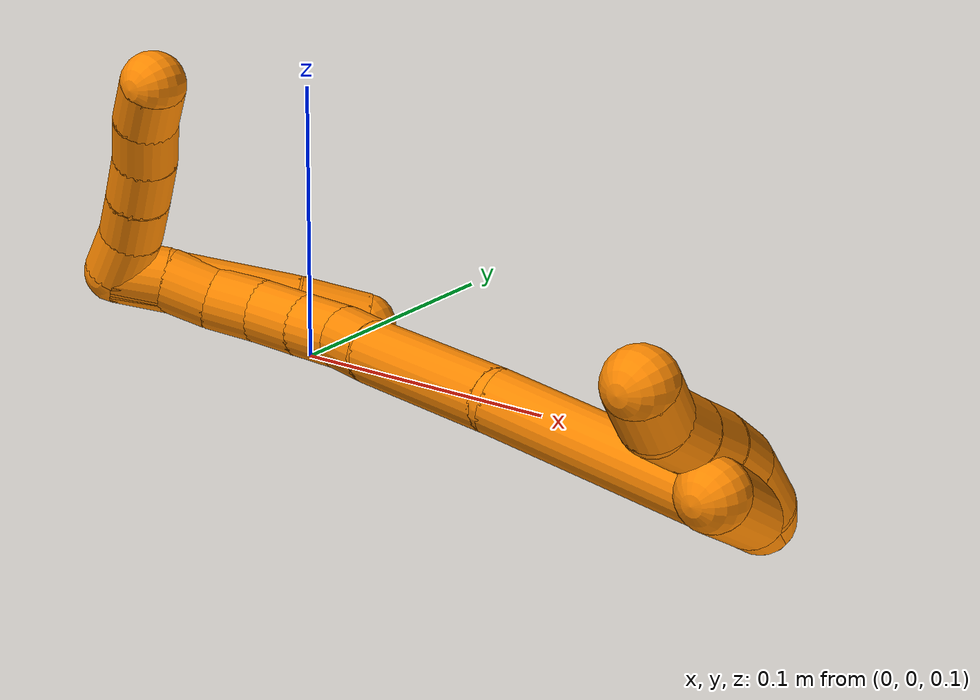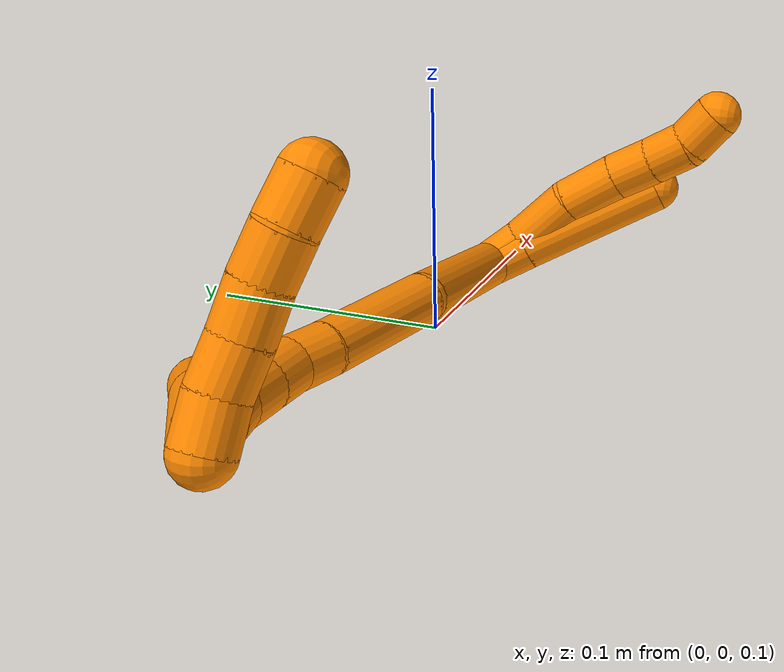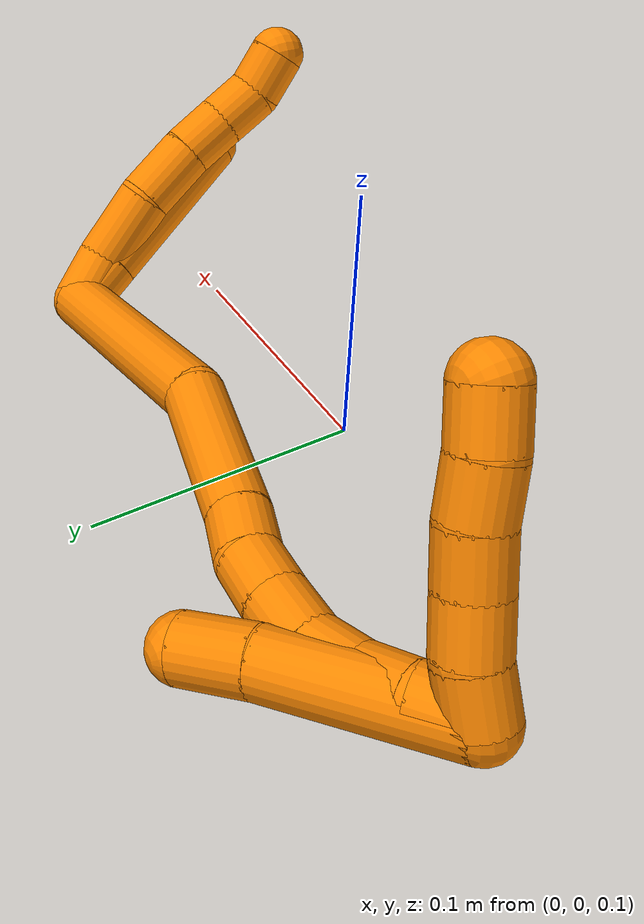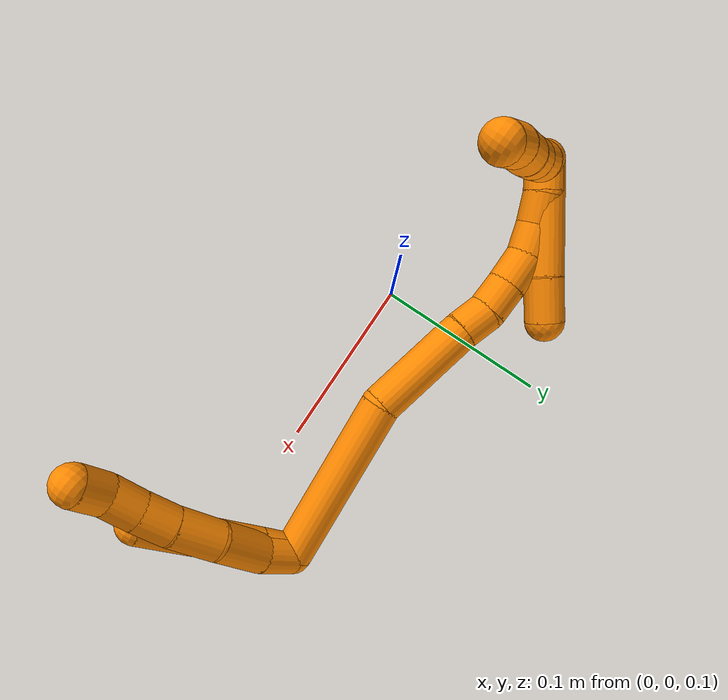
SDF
<sdf version="1.7">
 <world name="default">
  <model name="19">
   <static>0</static>
   <link name="19">
    <collision name="collision-cylinder-e_1_2_8">
     <pose>0.006887 -0.004258 -0.007952 2.64995 0.652085 1.8648</pose>
     <geometry><cylinder><radius>0.0125</radius><length>0.022697</length></cylinder></geometry>
     <surface>
      <friction><ode><mu>1.16</mu><mu2>1.16</mu2><slip1>0</slip1><slip2>0</slip2></ode></friction>
      <contact><ode><kp>1e+06</kp><kd>1</kd><max_vel>0</max_vel><min_depth>0.001</min_depth></ode></contact>
     </surface>
    </collision>
    <visual name="visual-cylinder-e_1_2_8">
     <pose>0.006887 -0.004258 -0.007952 2.64995 0.652085 1.8648</pose>
     <geometry><cylinder><radius>0.0125</radius><length>0.022697</length></cylinder></geometry>
     <material><ambient>0.996078 0.537255 0 1</ambient></material>
    </visual>
    <collision name="collision-cylinder-e_2_8_9">
     <pose>0.021099 -0.018399 -0.027818 2.44915 0.441994 1.11399</pose>
     <geometry><cylinder><radius>0.0125</radius><length>0.034251</length></cylinder></geometry>
     <surface>
      <friction><ode><mu>1.16</mu><mu2>1.16</mu2><slip1>0</slip1><slip2>0</slip2></ode></friction>
      <contact><ode><kp>1e+06</kp><kd>1</kd><max_vel>0</max_vel><min_depth>0.001</min_depth></ode></contact>
     </surface>
    </collision>
    <visual name="visual-cylinder-e_2_8_9">
     <pose>0.021099 -0.018399 -0.027818 2.44915 0.441994 1.11399</pose>
     <geometry><cylinder><radius>0.0125</radius><length>0.034251</length></cylinder></geometry>
     <material><ambient>0.996078 0.537255 0 1</ambient></material>
    </visual>
    <collision name="collision-cylinder-e_3_9_10">
     <pose>0.034359 -0.034276 -0.051944 2.68525 0.411398 1.46398</pose>
     <geometry><cylinder><radius>0.0125</radius><length>0.029684</length></cylinder></geometry>
     <surface>
      <friction><ode><mu>1.16</mu><mu2>1.16</mu2><slip1>0</slip1><slip2>0</slip2></ode></friction>
      <contact><ode><kp>1e+06</kp><kd>1</kd><max_vel>0</max_vel><min_depth>0.001</min_depth></ode></contact>
     </surface>
    </collision>
    <visual name="visual-cylinder-e_3_9_10">
     <pose>0.034359 -0.034276 -0.051944 2.68525 0.411398 1.46398</pose>
     <geometry><cylinder><radius>0.0125</radius><length>0.029684</length></cylinder></geometry>
     <material><ambient>0.996078 0.537255 0 1</ambient></material>
    </visual>
    <collision name="collision-cylinder-e_4_10_11">
     <pose>0.043567 -0.044615 -0.073667 2.71315 0.303342 1.22487</pose>
     <geometry><cylinder><radius>0.0125</radius><length>0.021913</length></cylinder></geometry>
     <surface>
      <friction><ode><mu>1.16</mu><mu2>1.16</mu2><slip1>0</slip1><slip2>0</slip2></ode></friction>
      <contact><ode><kp>1e+06</kp><kd>1</kd><max_vel>0</max_vel><min_depth>0.001</min_depth></ode></contact>
     </surface>
    </collision>
    <visual name="visual-cylinder-e_4_10_11">
     <pose>0.043567 -0.044615 -0.073667 2.71315 0.303342 1.22487</pose>
     <geometry><cylinder><radius>0.0125</radius><length>0.021913</length></cylinder></geometry>
     <material><ambient>0.996078 0.537255 0 1</ambient></material>
    </visual>
    <collision name="collision-cylinder-e_5_11_12">
     <pose>0.049537 -0.053629 -0.0921 2.65938 0.261686 0.982777</pose>
     <geometry><cylinder><radius>0.0125</radius><length>0.020852</length></cylinder></geometry>
     <surface>
      <friction><ode><mu>1.16</mu><mu2>1.16</mu2><slip1>0</slip1><slip2>0</slip2></ode></friction>
      <contact><ode><kp>1e+06</kp><kd>1</kd><max_vel>0</max_vel><min_depth>0.001</min_depth></ode></contact>
     </surface>
    </collision>
    <visual name="visual-cylinder-e_5_11_12">
     <pose>0.049537 -0.053629 -0.0921 2.65938 0.261686 0.982777</pose>
     <geometry><cylinder><radius>0.0125</radius><length>0.020852</length></cylinder></geometry>
     <material><ambient>0.996078 0.537255 0 1</ambient></material>
    </visual>
    <collision name="collision-cylinder-e_6_12_6">
     <pose>0.056758 -0.06489 -0.107522 2.34922 0.454592 1.01018</pose>
     <geometry><cylinder><radius>0.0125</radius><length>0.020603</length></cylinder></geometry>
     <surface>
      <friction><ode><mu>1.16</mu><mu2>1.16</mu2><slip1>0</slip1><slip2>0</slip2></ode></friction>
      <contact><ode><kp>1e+06</kp><kd>1</kd><max_vel>0</max_vel><min_depth>0.001</min_depth></ode></contact>
     </surface>
    </collision>
    <visual name="visual-cylinder-e_6_12_6">
     <pose>0.056758 -0.06489 -0.107522 2.34922 0.454592 1.01018</pose>
     <geometry><cylinder><radius>0.0125</radius><length>0.020603</length></cylinder></geometry>
     <material><ambient>0.996078 0.537255 0 1</ambient></material>
    </visual>
    <collision name="collision-cylinder-e_1_2_13">
     <pose>0.005609 -0.003415 -0.009477 2.7957 0.50804 1.95705</pose>
     <geometry><cylinder><radius>0.0125</radius><length>0.023059</length></cylinder></geometry>
     <surface>
      <friction><ode><mu>1.16</mu><mu2>1.16</mu2><slip1>0</slip1><slip2>0</slip2></ode></friction>
      <contact><ode><kp>1e+06</kp><kd>1</kd><max_vel>0</max_vel><min_depth>0.001</min_depth></ode></contact>
     </surface>
    </collision>
    <visual name="visual-cylinder-e_1_2_13">
     <pose>0.005609 -0.003415 -0.009477 2.7957 0.50804 1.95705</pose>
     <geometry><cylinder><radius>0.0125</radius><length>0.023059</length></cylinder></geometry>
     <material><ambient>0.996078 0.537255 0 1</ambient></material>
    </visual>
    <collision name="collision-cylinder-e_2_13_5">
     <pose>0.030067 -0.017613 -0.050709 2.81427 0.512059 2.01602</pose>
     <geometry><cylinder><radius>0.0125</radius><length>0.076941</length></cylinder></geometry>
     <surface>
      <friction><ode><mu>1.16</mu><mu2>1.16</mu2><slip1>0</slip1><slip2>0</slip2></ode></friction>
      <contact><ode><kp>1e+06</kp><kd>1</kd><max_vel>0</max_vel><min_depth>0.001</min_depth></ode></contact>
     </surface>
    </collision>
    <visual name="visual-cylinder-e_2_13_5">
     <pose>0.030067 -0.017613 -0.050709 2.81427 0.512059 2.01602</pose>
     <geometry><cylinder><radius>0.0125</radius><length>0.076941</length></cylinder></geometry>
     <material><ambient>0.996078 0.537255 0 1</ambient></material>
    </visual>
    <collision name="collision-cylinder-e_1_2_14">
     <pose>-0.044401 -0.031312 -0.005027 1.72999 -0.950579 -1.0865</pose>
     <geometry><cylinder><radius>0.0125</radius><length>0.109126</length></cylinder></geometry>
     <surface>
      <friction><ode><mu>1.16</mu><mu2>1.16</mu2><slip1>0</slip1><slip2>0</slip2></ode></friction>
      <contact><ode><kp>1e+06</kp><kd>1</kd><max_vel>0</max_vel><min_depth>0.001</min_depth></ode></contact>
     </surface>
    </collision>
    <visual name="visual-cylinder-e_1_2_14">
     <pose>-0.044401 -0.031312 -0.005027 1.72999 -0.950579 -1.0865</pose>
     <geometry><cylinder><radius>0.0125</radius><length>0.109126</length></cylinder></geometry>
     <material><ambient>0.996078 0.537255 0 1</ambient></material>
    </visual>
    <collision name="collision-cylinder-e_2_14_15">
     <pose>-0.119163 -0.076053 -0.00361 1.12343 -1.11468 -0.747594</pose>
     <geometry><cylinder><radius>0.0125</radius><length>0.067638</length></cylinder></geometry>
     <surface>
      <friction><ode><mu>1.16</mu><mu2>1.16</mu2><slip1>0</slip1><slip2>0</slip2></ode></friction>
      <contact><ode><kp>1e+06</kp><kd>1</kd><max_vel>0</max_vel><min_depth>0.001</min_depth></ode></contact>
     </surface>
    </collision>
    <visual name="visual-cylinder-e_2_14_15">
     <pose>-0.119163 -0.076053 -0.00361 1.12343 -1.11468 -0.747594</pose>
     <geometry><cylinder><radius>0.0125</radius><length>0.067638</length></cylinder></geometry>
     <material><ambient>0.996078 0.537255 0 1</ambient></material>
    </visual>
    <collision name="collision-cylinder-e_3_15_16">
     <pose>-0.158434 -0.093325 0.005675 0.933897 -1.0785 -0.585993</pose>
     <geometry><cylinder><radius>0.0125</radius><length>0.02022</length></cylinder></geometry>
     <surface>
      <friction><ode><mu>1.16</mu><mu2>1.16</mu2><slip1>0</slip1><slip2>0</slip2></ode></friction>
      <contact><ode><kp>1e+06</kp><kd>1</kd><max_vel>0</max_vel><min_depth>0.001</min_depth></ode></contact>
     </surface>
    </collision>
    <visual name="visual-cylinder-e_3_15_16">
     <pose>-0.158434 -0.093325 0.005675 0.933897 -1.0785 -0.585993</pose>
     <geometry><cylinder><radius>0.0125</radius><length>0.02022</length></cylinder></geometry>
     <material><ambient>0.996078 0.537255 0 1</ambient></material>
    </visual>
    <collision name="collision-cylinder-e_4_16_17">
     <pose>-0.176518 -0.101531 0.00866 1.53801 -1.12663 -1.09723</pose>
     <geometry><cylinder><radius>0.0125</radius><length>0.020321</length></cylinder></geometry>
     <surface>
      <friction><ode><mu>1.16</mu><mu2>1.16</mu2><slip1>0</slip1><slip2>0</slip2></ode></friction>
      <contact><ode><kp>1e+06</kp><kd>1</kd><max_vel>0</max_vel><min_depth>0.001</min_depth></ode></contact>
     </surface>
    </collision>
    <visual name="visual-cylinder-e_4_16_17">
     <pose>-0.176518 -0.101531 0.00866 1.53801 -1.12663 -1.09723</pose>
     <geometry><cylinder><radius>0.0125</radius><length>0.020321</length></cylinder></geometry>
     <material><ambient>0.996078 0.537255 0 1</ambient></material>
    </visual>
    <collision name="collision-cylinder-e_5_17_18">
     <pose>-0.195531 -0.110991 0.008487 1.63282 -1.09202 -1.14787</pose>
     <geometry><cylinder><radius>0.0125</radius><length>0.022169</length></cylinder></geometry>
     <surface>
      <friction><ode><mu>1.16</mu><mu2>1.16</mu2><slip1>0</slip1><slip2>0</slip2></ode></friction>
      <contact><ode><kp>1e+06</kp><kd>1</kd><max_vel>0</max_vel><min_depth>0.001</min_depth></ode></contact>
     </surface>
    </collision>
    <visual name="visual-cylinder-e_5_17_18">
     <pose>-0.195531 -0.110991 0.008487 1.63282 -1.09202 -1.14787</pose>
     <geometry><cylinder><radius>0.0125</radius><length>0.022169</length></cylinder></geometry>
     <material><ambient>0.996078 0.537255 0 1</ambient></material>
    </visual>
    <collision name="collision-cylinder-e_6_18_19">
     <pose>-0.213282 -0.121416 0.004988 2.10919 -0.905751 -1.41756</pose>
     <geometry><cylinder><radius>0.0125</radius><length>0.020112</length></cylinder></geometry>
     <surface>
      <friction><ode><mu>1.16</mu><mu2>1.16</mu2><slip1>0</slip1><slip2>0</slip2></ode></friction>
      <contact><ode><kp>1e+06</kp><kd>1</kd><max_vel>0</max_vel><min_depth>0.001</min_depth></ode></contact>
     </surface>
    </collision>
    <visual name="visual-cylinder-e_6_18_19">
     <pose>-0.213282 -0.121416 0.004988 2.10919 -0.905751 -1.41756</pose>
     <geometry><cylinder><radius>0.0125</radius><length>0.020112</length></cylinder></geometry>
     <material><ambient>0.996078 0.537255 0 1</ambient></material>
    </visual>
    <collision name="collision-cylinder-e_7_19_20">
     <pose>-0.227831 -0.133167 -0.002249 2.1339 -0.718013 -1.1953</pose>
     <geometry><cylinder><radius>0.0125</radius><length>0.020173</length></cylinder></geometry>
     <surface>
      <friction><ode><mu>1.16</mu><mu2>1.16</mu2><slip1>0</slip1><slip2>0</slip2></ode></friction>
      <contact><ode><kp>1e+06</kp><kd>1</kd><max_vel>0</max_vel><min_depth>0.001</min_depth></ode></contact>
     </surface>
    </collision>
    <visual name="visual-cylinder-e_7_19_20">
     <pose>-0.227831 -0.133167 -0.002249 2.1339 -0.718013 -1.1953</pose>
     <geometry><cylinder><radius>0.0125</radius><length>0.020173</length></cylinder></geometry>
     <material><ambient>0.996078 0.537255 0 1</ambient></material>
    </visual>
    <collision name="collision-cylinder-e_8_20_1">
     <pose>-0.241268 -0.144391 -0.012058 2.4462 -0.737024 -1.63419</pose>
     <geometry><cylinder><radius>0.0125</radius><length>0.020241</length></cylinder></geometry>
     <surface>
      <friction><ode><mu>1.16</mu><mu2>1.16</mu2><slip1>0</slip1><slip2>0</slip2></ode></friction>
      <contact><ode><kp>1e+06</kp><kd>1</kd><max_vel>0</max_vel><min_depth>0.001</min_depth></ode></contact>
     </surface>
    </collision>
    <visual name="visual-cylinder-e_8_20_1">
     <pose>-0.241268 -0.144391 -0.012058 2.4462 -0.737024 -1.63419</pose>
     <geometry><cylinder><radius>0.0125</radius><length>0.020241</length></cylinder></geometry>
     <material><ambient>0.996078 0.537255 0 1</ambient></material>
    </visual>
    <collision name="collision-cylinder-e_1_1_21">
     <pose>-0.225549 -0.130977 0.003387 -0.709866 0.678256 -0.260009</pose>
     <geometry><cylinder><radius>0.0125</radius><length>0.071789</length></cylinder></geometry>
     <surface>
      <friction><ode><mu>1.16</mu><mu2>1.16</mu2><slip1>0</slip1><slip2>0</slip2></ode></friction>
      <contact><ode><kp>1e+06</kp><kd>1</kd><max_vel>0</max_vel><min_depth>0.001</min_depth></ode></contact>
     </surface>
    </collision>
    <visual name="visual-cylinder-e_1_1_21">
     <pose>-0.225549 -0.130977 0.003387 -0.709866 0.678256 -0.260009</pose>
     <geometry><cylinder><radius>0.0125</radius><length>0.071789</length></cylinder></geometry>
     <material><ambient>0.996078 0.537255 0 1</ambient></material>
    </visual>
    <collision name="collision-cylinder-e_2_21_4">
     <pose>-0.195091 -0.104946 0.03324 -0.734459 0.597588 -0.235874</pose>
     <geometry><cylinder><radius>0.0125</radius><length>0.028211</length></cylinder></geometry>
     <surface>
      <friction><ode><mu>1.16</mu><mu2>1.16</mu2><slip1>0</slip1><slip2>0</slip2></ode></friction>
      <contact><ode><kp>1e+06</kp><kd>1</kd><max_vel>0</max_vel><min_depth>0.001</min_depth></ode></contact>
     </surface>
    </collision>
    <visual name="visual-cylinder-e_2_21_4">
     <pose>-0.195091 -0.104946 0.03324 -0.734459 0.597588 -0.235874</pose>
     <geometry><cylinder><radius>0.0125</radius><length>0.028211</length></cylinder></geometry>
     <material><ambient>0.996078 0.537255 0 1</ambient></material>
    </visual>
    <collision name="collision-cylinder-e_1_1_22">
     <pose>-0.24004 -0.155144 -0.018121 1.6228 0.932376 0.974798</pose>
     <geometry><cylinder><radius>0.0125</radius><length>0.02</length></cylinder></geometry>
     <surface>
      <friction><ode><mu>1.16</mu><mu2>1.16</mu2><slip1>0</slip1><slip2>0</slip2></ode></friction>
      <contact><ode><kp>1e+06</kp><kd>1</kd><max_vel>0</max_vel><min_depth>0.001</min_depth></ode></contact>
     </surface>
    </collision>
    <visual name="visual-cylinder-e_1_1_22">
     <pose>-0.24004 -0.155144 -0.018121 1.6228 0.932376 0.974798</pose>
     <geometry><cylinder><radius>0.0125</radius><length>0.02</length></cylinder></geometry>
     <material><ambient>0.996078 0.537255 0 1</ambient></material>
    </visual>
    <collision name="collision-cylinder-e_2_22_23">
     <pose>-0.224373 -0.16719 -0.020558 1.90652 0.869023 1.15762</pose>
     <geometry><cylinder><radius>0.0125</radius><length>0.02</length></cylinder></geometry>
     <surface>
      <friction><ode><mu>1.16</mu><mu2>1.16</mu2><slip1>0</slip1><slip2>0</slip2></ode></friction>
      <contact><ode><kp>1e+06</kp><kd>1</kd><max_vel>0</max_vel><min_depth>0.001</min_depth></ode></contact>
     </surface>
    </collision>
    <visual name="visual-cylinder-e_2_22_23">
     <pose>-0.224373 -0.16719 -0.020558 1.90652 0.869023 1.15762</pose>
     <geometry><cylinder><radius>0.0125</radius><length>0.02</length></cylinder></geometry>
     <material><ambient>0.996078 0.537255 0 1</ambient></material>
    </visual>
    <collision name="collision-cylinder-e_3_23_24">
     <pose>-0.209348 -0.179762 -0.02455 1.85114 0.831284 1.06066</pose>
     <geometry><cylinder><radius>0.0125</radius><length>0.02</length></cylinder></geometry>
     <surface>
      <friction><ode><mu>1.16</mu><mu2>1.16</mu2><slip1>0</slip1><slip2>0</slip2></ode></friction>
      <contact><ode><kp>1e+06</kp><kd>1</kd><max_vel>0</max_vel><min_depth>0.001</min_depth></ode></contact>
     </surface>
    </collision>
    <visual name="visual-cylinder-e_3_23_24">
     <pose>-0.209348 -0.179762 -0.02455 1.85114 0.831284 1.06066</pose>
     <geometry><cylinder><radius>0.0125</radius><length>0.02</length></cylinder></geometry>
     <material><ambient>0.996078 0.537255 0 1</ambient></material>
    </visual>
    <collision name="collision-cylinder-e_4_24_25">
     <pose>-0.195119 -0.192883 -0.029424 1.9961 0.753284 1.10037</pose>
     <geometry><cylinder><radius>0.0125</radius><length>0.02</length></cylinder></geometry>
     <surface>
      <friction><ode><mu>1.16</mu><mu2>1.16</mu2><slip1>0</slip1><slip2>0</slip2></ode></friction>
      <contact><ode><kp>1e+06</kp><kd>1</kd><max_vel>0</max_vel><min_depth>0.001</min_depth></ode></contact>
     </surface>
    </collision>
    <visual name="visual-cylinder-e_4_24_25">
     <pose>-0.195119 -0.192883 -0.029424 1.9961 0.753284 1.10037</pose>
     <geometry><cylinder><radius>0.0125</radius><length>0.02</length></cylinder></geometry>
     <material><ambient>0.996078 0.537255 0 1</ambient></material>
    </visual>
    <collision name="collision-cylinder-e_5_25_3">
     <pose>-0.180405 -0.205114 -0.03504 2.00728 0.90658 1.30575</pose>
     <geometry><cylinder><radius>0.0125</radius><length>0.02</length></cylinder></geometry>
     <surface>
      <friction><ode><mu>1.16</mu><mu2>1.16</mu2><slip1>0</slip1><slip2>0</slip2></ode></friction>
      <contact><ode><kp>1e+06</kp><kd>1</kd><max_vel>0</max_vel><min_depth>0.001</min_depth></ode></contact>
     </surface>
    </collision>
    <visual name="visual-cylinder-e_5_25_3">
     <pose>-0.180405 -0.205114 -0.03504 2.00728 0.90658 1.30575</pose>
     <geometry><cylinder><radius>0.0125</radius><length>0.02</length></cylinder></geometry>
     <material><ambient>0.996078 0.537255 0 1</ambient></material>
    </visual>
    <collision name="collision-sphere-3">
     <pose>-0.172531 -0.2107 -0.037646 0 -0 0</pose>
     <geometry><sphere><radius>0.0125</radius></sphere></geometry>
     <surface>
      <friction><ode><mu>1.16</mu><mu2>1.16</mu2><slip1>0</slip1><slip2>0</slip2></ode></friction>
      <contact><ode><kp>1e+06</kp><kd>1</kd><max_vel>0</max_vel><min_depth>0.001</min_depth></ode></contact>
     </surface>
    </collision>
    <visual name="visual-sphere-3">
     <pose>-0.172531 -0.2107 -0.037646 0 -0 0</pose>
     <geometry><sphere><radius>0.0125</radius></sphere></geometry>
     <material><ambient>0.996078 0.537255 0 1</ambient></material>
    </visual>
    <collision name="collision-sphere-25">
     <pose>-0.188279 -0.199527 -0.032434 0 -0 0</pose>
     <geometry><sphere><radius>0.0125</radius></sphere></geometry>
     <surface>
      <friction><ode><mu>1.16</mu><mu2>1.16</mu2><slip1>0</slip1><slip2>0</slip2></ode></friction>
      <contact><ode><kp>1e+06</kp><kd>1</kd><max_vel>0</max_vel><min_depth>0.001</min_depth></ode></contact>
     </surface>
    </collision>
    <visual name="visual-sphere-25">
     <pose>-0.188279 -0.199527 -0.032434 0 -0 0</pose>
     <geometry><sphere><radius>0.0125</radius></sphere></geometry>
     <material><ambient>0.996078 0.537255 0 1</ambient></material>
    </visual>
    <collision name="collision-sphere-24">
     <pose>-0.20196 -0.186238 -0.026414 0 -0 0</pose>
     <geometry><sphere><radius>0.0125</radius></sphere></geometry>
     <surface>
      <friction><ode><mu>1.16</mu><mu2>1.16</mu2><slip1>0</slip1><slip2>0</slip2></ode></friction>
      <contact><ode><kp>1e+06</kp><kd>1</kd><max_vel>0</max_vel><min_depth>0.001</min_depth></ode></contact>
     </surface>
    </collision>
    <visual name="visual-sphere-24">
     <pose>-0.20196 -0.186238 -0.026414 0 -0 0</pose>
     <geometry><sphere><radius>0.0125</radius></sphere></geometry>
     <material><ambient>0.996078 0.537255 0 1</ambient></material>
    </visual>
    <collision name="collision-sphere-23">
     <pose>-0.216736 -0.173286 -0.022685 0 -0 0</pose>
     <geometry><sphere><radius>0.0125</radius></sphere></geometry>
     <surface>
      <friction><ode><mu>1.16</mu><mu2>1.16</mu2><slip1>0</slip1><slip2>0</slip2></ode></friction>
      <contact><ode><kp>1e+06</kp><kd>1</kd><max_vel>0</max_vel><min_depth>0.001</min_depth></ode></contact>
     </surface>
    </collision>
    <visual name="visual-sphere-23">
     <pose>-0.216736 -0.173286 -0.022685 0 -0 0</pose>
     <geometry><sphere><radius>0.0125</radius></sphere></geometry>
     <material><ambient>0.996078 0.537255 0 1</ambient></material>
    </visual>
    <collision name="collision-sphere-22">
     <pose>-0.23201 -0.161095 -0.018431 0 -0 0</pose>
     <geometry><sphere><radius>0.0125</radius></sphere></geometry>
     <surface>
      <friction><ode><mu>1.16</mu><mu2>1.16</mu2><slip1>0</slip1><slip2>0</slip2></ode></friction>
      <contact><ode><kp>1e+06</kp><kd>1</kd><max_vel>0</max_vel><min_depth>0.001</min_depth></ode></contact>
     </surface>
    </collision>
    <visual name="visual-sphere-22">
     <pose>-0.23201 -0.161095 -0.018431 0 -0 0</pose>
     <geometry><sphere><radius>0.0125</radius></sphere></geometry>
     <material><ambient>0.996078 0.537255 0 1</ambient></material>
    </visual>
    <collision name="collision-sphere-4">
     <pose>-0.187155 -0.097131 0.041895 0 -0 0</pose>
     <geometry><sphere><radius>0.0125</radius></sphere></geometry>
     <surface>
      <friction><ode><mu>1.16</mu><mu2>1.16</mu2><slip1>0</slip1><slip2>0</slip2></ode></friction>
      <contact><ode><kp>1e+06</kp><kd>1</kd><max_vel>0</max_vel><min_depth>0.001</min_depth></ode></contact>
     </surface>
    </collision>
    <visual name="visual-sphere-4">
     <pose>-0.187155 -0.097131 0.041895 0 -0 0</pose>
     <geometry><sphere><radius>0.0125</radius></sphere></geometry>
     <material><ambient>0.996078 0.537255 0 1</ambient></material>
    </visual>
    <collision name="collision-sphere-21">
     <pose>-0.203028 -0.112761 0.024585 0 -0 0</pose>
     <geometry><sphere><radius>0.0125</radius></sphere></geometry>
     <surface>
      <friction><ode><mu>1.16</mu><mu2>1.16</mu2><slip1>0</slip1><slip2>0</slip2></ode></friction>
      <contact><ode><kp>1e+06</kp><kd>1</kd><max_vel>0</max_vel><min_depth>0.001</min_depth></ode></contact>
     </surface>
    </collision>
    <visual name="visual-sphere-21">
     <pose>-0.203028 -0.112761 0.024585 0 -0 0</pose>
     <geometry><sphere><radius>0.0125</radius></sphere></geometry>
     <material><ambient>0.996078 0.537255 0 1</ambient></material>
    </visual>
    <collision name="collision-sphere-1">
     <pose>-0.24807 -0.149193 -0.017812 0 -0 0</pose>
     <geometry><sphere><radius>0.0125</radius></sphere></geometry>
     <surface>
      <friction><ode><mu>1.16</mu><mu2>1.16</mu2><slip1>0</slip1><slip2>0</slip2></ode></friction>
      <contact><ode><kp>1e+06</kp><kd>1</kd><max_vel>0</max_vel><min_depth>0.001</min_depth></ode></contact>
     </surface>
    </collision>
    <visual name="visual-sphere-1">
     <pose>-0.24807 -0.149193 -0.017812 0 -0 0</pose>
     <geometry><sphere><radius>0.0125</radius></sphere></geometry>
     <material><ambient>0.996078 0.537255 0 1</ambient></material>
    </visual>
    <collision name="collision-sphere-12">
     <pose>0.052235 -0.0583 -0.101023 0 -0 0</pose>
     <geometry><sphere><radius>0.0125</radius></sphere></geometry>
     <surface>
      <friction><ode><mu>1.16</mu><mu2>1.16</mu2><slip1>0</slip1><slip2>0</slip2></ode></friction>
      <contact><ode><kp>1e+06</kp><kd>1</kd><max_vel>0</max_vel><min_depth>0.001</min_depth></ode></contact>
     </surface>
    </collision>
    <visual name="visual-sphere-12">
     <pose>0.052235 -0.0583 -0.101023 0 -0 0</pose>
     <geometry><sphere><radius>0.0125</radius></sphere></geometry>
     <material><ambient>0.996078 0.537255 0 1</ambient></material>
    </visual>
    <collision name="collision-sphere-11">
     <pose>0.04684 -0.048959 -0.083178 0 -0 0</pose>
     <geometry><sphere><radius>0.0125</radius></sphere></geometry>
     <surface>
      <friction><ode><mu>1.16</mu><mu2>1.16</mu2><slip1>0</slip1><slip2>0</slip2></ode></friction>
      <contact><ode><kp>1e+06</kp><kd>1</kd><max_vel>0</max_vel><min_depth>0.001</min_depth></ode></contact>
     </surface>
    </collision>
    <visual name="visual-sphere-11">
     <pose>0.04684 -0.048959 -0.083178 0 -0 0</pose>
     <geometry><sphere><radius>0.0125</radius></sphere></geometry>
     <material><ambient>0.996078 0.537255 0 1</ambient></material>
    </visual>
    <collision name="collision-sphere-10">
     <pose>0.040294 -0.040271 -0.064155 0 -0 0</pose>
     <geometry><sphere><radius>0.0125</radius></sphere></geometry>
     <surface>
      <friction><ode><mu>1.16</mu><mu2>1.16</mu2><slip1>0</slip1><slip2>0</slip2></ode></friction>
      <contact><ode><kp>1e+06</kp><kd>1</kd><max_vel>0</max_vel><min_depth>0.001</min_depth></ode></contact>
     </surface>
    </collision>
    <visual name="visual-sphere-10">
     <pose>0.040294 -0.040271 -0.064155 0 -0 0</pose>
     <geometry><sphere><radius>0.0125</radius></sphere></geometry>
     <material><ambient>0.996078 0.537255 0 1</ambient></material>
    </visual>
    <collision name="collision-sphere-9">
     <pose>0.028424 -0.028282 -0.039733 0 -0 0</pose>
     <geometry><sphere><radius>0.0125</radius></sphere></geometry>
     <surface>
      <friction><ode><mu>1.16</mu><mu2>1.16</mu2><slip1>0</slip1><slip2>0</slip2></ode></friction>
      <contact><ode><kp>1e+06</kp><kd>1</kd><max_vel>0</max_vel><min_depth>0.001</min_depth></ode></contact>
     </surface>
    </collision>
    <visual name="visual-sphere-9">
     <pose>0.028424 -0.028282 -0.039733 0 -0 0</pose>
     <geometry><sphere><radius>0.0125</radius></sphere></geometry>
     <material><ambient>0.996078 0.537255 0 1</ambient></material>
    </visual>
    <collision name="collision-sphere-2">
     <geometry><sphere><radius>0.0125</radius></sphere></geometry>
     <surface>
      <friction><ode><mu>1.16</mu><mu2>1.16</mu2><slip1>0</slip1><slip2>0</slip2></ode></friction>
      <contact><ode><kp>1e+06</kp><kd>1</kd><max_vel>0</max_vel><min_depth>0.001</min_depth></ode></contact>
     </surface>
    </collision>
    <visual name="visual-sphere-2">
     <geometry><sphere><radius>0.0125</radius></sphere></geometry>
     <material><ambient>0.996078 0.537255 0 1</ambient></material>
    </visual>
    <collision name="collision-sphere-19">
     <pose>-0.221195 -0.126743 0.001806 0 -0 0</pose>
     <geometry><sphere><radius>0.0125</radius></sphere></geometry>
     <surface>
      <friction><ode><mu>1.16</mu><mu2>1.16</mu2><slip1>0</slip1><slip2>0</slip2></ode></friction>
      <contact><ode><kp>1e+06</kp><kd>1</kd><max_vel>0</max_vel><min_depth>0.001</min_depth></ode></contact>
     </surface>
    </collision>
    <visual name="visual-sphere-19">
     <pose>-0.221195 -0.126743 0.001806 0 -0 0</pose>
     <geometry><sphere><radius>0.0125</radius></sphere></geometry>
     <material><ambient>0.996078 0.537255 0 1</ambient></material>
    </visual>
    <collision name="collision-sphere-8">
     <pose>0.013773 -0.008516 -0.015903 0 -0 0</pose>
     <geometry><sphere><radius>0.0125</radius></sphere></geometry>
     <surface>
      <friction><ode><mu>1.16</mu><mu2>1.16</mu2><slip1>0</slip1><slip2>0</slip2></ode></friction>
      <contact><ode><kp>1e+06</kp><kd>1</kd><max_vel>0</max_vel><min_depth>0.001</min_depth></ode></contact>
     </surface>
    </collision>
    <visual name="visual-sphere-8">
     <pose>0.013773 -0.008516 -0.015903 0 -0 0</pose>
     <geometry><sphere><radius>0.0125</radius></sphere></geometry>
     <material><ambient>0.996078 0.537255 0 1</ambient></material>
    </visual>
    <collision name="collision-sphere-6">
     <pose>0.061282 -0.07148 -0.114021 0 -0 0</pose>
     <geometry><sphere><radius>0.0125</radius></sphere></geometry>
     <surface>
      <friction><ode><mu>1.16</mu><mu2>1.16</mu2><slip1>0</slip1><slip2>0</slip2></ode></friction>
      <contact><ode><kp>1e+06</kp><kd>1</kd><max_vel>0</max_vel><min_depth>0.001</min_depth></ode></contact>
     </surface>
    </collision>
    <visual name="visual-sphere-6">
     <pose>0.061282 -0.07148 -0.114021 0 -0 0</pose>
     <geometry><sphere><radius>0.0125</radius></sphere></geometry>
     <material><ambient>0.996078 0.537255 0 1</ambient></material>
    </visual>
    <collision name="collision-sphere-13">
     <pose>0.011217 -0.00683 -0.018954 0 -0 0</pose>
     <geometry><sphere><radius>0.0125</radius></sphere></geometry>
     <surface>
      <friction><ode><mu>1.16</mu><mu2>1.16</mu2><slip1>0</slip1><slip2>0</slip2></ode></friction>
      <contact><ode><kp>1e+06</kp><kd>1</kd><max_vel>0</max_vel><min_depth>0.001</min_depth></ode></contact>
     </surface>
    </collision>
    <visual name="visual-sphere-13">
     <pose>0.011217 -0.00683 -0.018954 0 -0 0</pose>
     <geometry><sphere><radius>0.0125</radius></sphere></geometry>
     <material><ambient>0.996078 0.537255 0 1</ambient></material>
    </visual>
    <collision name="collision-sphere-5">
     <pose>0.048916 -0.028395 -0.082465 0 -0 0</pose>
     <geometry><sphere><radius>0.0125</radius></sphere></geometry>
     <surface>
      <friction><ode><mu>1.16</mu><mu2>1.16</mu2><slip1>0</slip1><slip2>0</slip2></ode></friction>
      <contact><ode><kp>1e+06</kp><kd>1</kd><max_vel>0</max_vel><min_depth>0.001</min_depth></ode></contact>
     </surface>
    </collision>
    <visual name="visual-sphere-5">
     <pose>0.048916 -0.028395 -0.082465 0 -0 0</pose>
     <geometry><sphere><radius>0.0125</radius></sphere></geometry>
     <material><ambient>0.996078 0.537255 0 1</ambient></material>
    </visual>
    <collision name="collision-sphere-14">
     <pose>-0.088801 -0.062623 -0.010054 0 -0 0</pose>
     <geometry><sphere><radius>0.0125</radius></sphere></geometry>
     <surface>
      <friction><ode><mu>1.16</mu><mu2>1.16</mu2><slip1>0</slip1><slip2>0</slip2></ode></friction>
      <contact><ode><kp>1e+06</kp><kd>1</kd><max_vel>0</max_vel><min_depth>0.001</min_depth></ode></contact>
     </surface>
    </collision>
    <visual name="visual-sphere-14">
     <pose>-0.088801 -0.062623 -0.010054 0 -0 0</pose>
     <geometry><sphere><radius>0.0125</radius></sphere></geometry>
     <material><ambient>0.996078 0.537255 0 1</ambient></material>
    </visual>
    <collision name="collision-sphere-15">
     <pose>-0.149525 -0.089484 0.002833 0 -0 0</pose>
     <geometry><sphere><radius>0.0125</radius></sphere></geometry>
     <surface>
      <friction><ode><mu>1.16</mu><mu2>1.16</mu2><slip1>0</slip1><slip2>0</slip2></ode></friction>
      <contact><ode><kp>1e+06</kp><kd>1</kd><max_vel>0</max_vel><min_depth>0.001</min_depth></ode></contact>
     </surface>
    </collision>
    <visual name="visual-sphere-15">
     <pose>-0.149525 -0.089484 0.002833 0 -0 0</pose>
     <geometry><sphere><radius>0.0125</radius></sphere></geometry>
     <material><ambient>0.996078 0.537255 0 1</ambient></material>
    </visual>
    <collision name="collision-sphere-16">
     <pose>-0.167343 -0.097167 0.008517 0 -0 0</pose>
     <geometry><sphere><radius>0.0125</radius></sphere></geometry>
     <surface>
      <friction><ode><mu>1.16</mu><mu2>1.16</mu2><slip1>0</slip1><slip2>0</slip2></ode></friction>
      <contact><ode><kp>1e+06</kp><kd>1</kd><max_vel>0</max_vel><min_depth>0.001</min_depth></ode></contact>
     </surface>
    </collision>
    <visual name="visual-sphere-16">
     <pose>-0.167343 -0.097167 0.008517 0 -0 0</pose>
     <geometry><sphere><radius>0.0125</radius></sphere></geometry>
     <material><ambient>0.996078 0.537255 0 1</ambient></material>
    </visual>
    <collision name="collision-sphere-17">
     <pose>-0.185693 -0.105894 0.008803 0 -0 0</pose>
     <geometry><sphere><radius>0.0125</radius></sphere></geometry>
     <surface>
      <friction><ode><mu>1.16</mu><mu2>1.16</mu2><slip1>0</slip1><slip2>0</slip2></ode></friction>
      <contact><ode><kp>1e+06</kp><kd>1</kd><max_vel>0</max_vel><min_depth>0.001</min_depth></ode></contact>
     </surface>
    </collision>
    <visual name="visual-sphere-17">
     <pose>-0.185693 -0.105894 0.008803 0 -0 0</pose>
     <geometry><sphere><radius>0.0125</radius></sphere></geometry>
     <material><ambient>0.996078 0.537255 0 1</ambient></material>
    </visual>
    <collision name="collision-sphere-18">
     <pose>-0.205369 -0.116088 0.00817 0 -0 0</pose>
     <geometry><sphere><radius>0.0125</radius></sphere></geometry>
     <surface>
      <friction><ode><mu>1.16</mu><mu2>1.16</mu2><slip1>0</slip1><slip2>0</slip2></ode></friction>
      <contact><ode><kp>1e+06</kp><kd>1</kd><max_vel>0</max_vel><min_depth>0.001</min_depth></ode></contact>
     </surface>
    </collision>
    <visual name="visual-sphere-18">
     <pose>-0.205369 -0.116088 0.00817 0 -0 0</pose>
     <geometry><sphere><radius>0.0125</radius></sphere></geometry>
     <material><ambient>0.996078 0.537255 0 1</ambient></material>
    </visual>
    <collision name="collision-sphere-20">
     <pose>-0.234466 -0.13959 -0.006304 0 -0 0</pose>
     <geometry><sphere><radius>0.0125</radius></sphere></geometry>
     <surface>
      <friction><ode><mu>1.16</mu><mu2>1.16</mu2><slip1>0</slip1><slip2>0</slip2></ode></friction>
      <contact><ode><kp>1e+06</kp><kd>1</kd><max_vel>0</max_vel><min_depth>0.001</min_depth></ode></contact>
     </surface>
    </collision>
    <visual name="visual-sphere-20">
     <pose>-0.234466 -0.13959 -0.006304 0 -0 0</pose>
     <geometry><sphere><radius>0.0125</radius></sphere></geometry>
     <material><ambient>0.996078 0.537255 0 1</ambient></material>
    </visual>
    <inertial>
     <pose>-0.09731 -0.079999 -0.019228 0 -0 0</pose>
     <mass>0.75</mass>
     <inertia>
      <ixx>3.1e-05</ixx>
      <ixy>0</ixy>
      <ixz>0</ixz>
      <iyy>0.000112</iyy>
      <iyz>0</iyz>
      <izz>0.000141</izz>
     </inertia>
    </inertial>
   </link>
   <pose>0.165242 0.037596 0.065458 -1.5611 -0.421994 -0.046611</pose>
  </model>
 </world>
</sdf>
